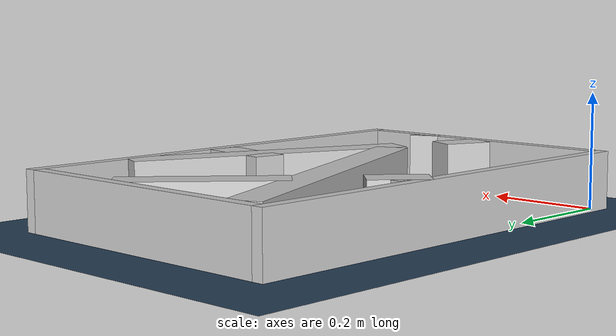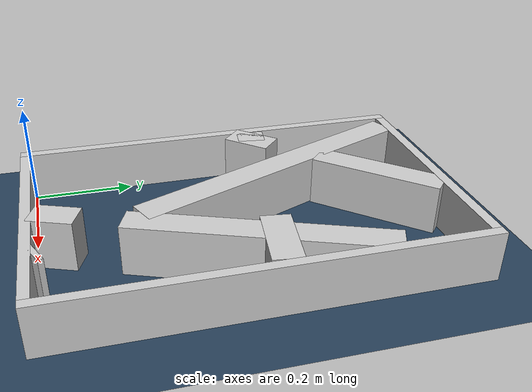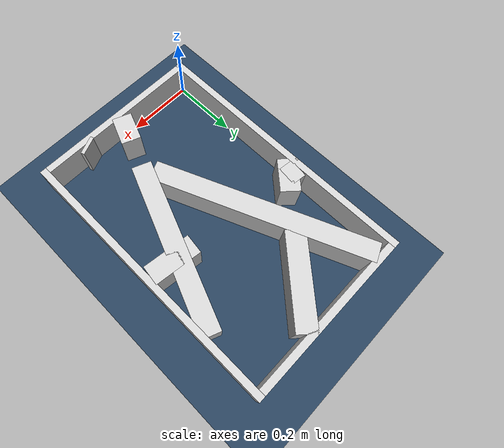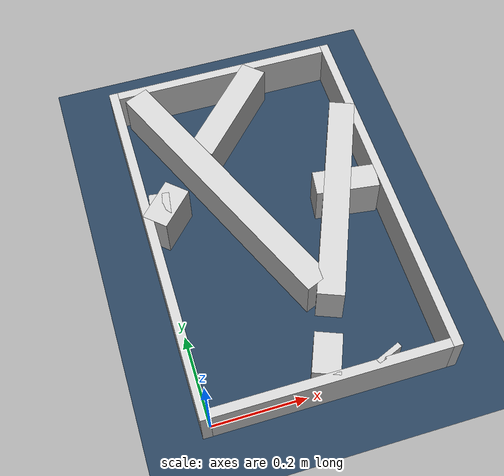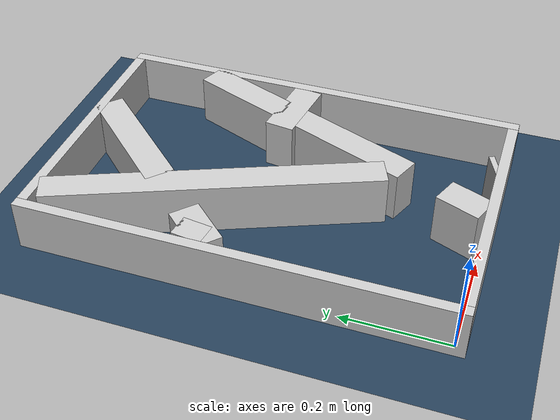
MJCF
<?xml version="1.0" ?>
<mujoco model="generated_real_template">
  <compiler angle="degree"/>
  <option timestep="0.002" integrator="implicitfast" iterations="100" cone="elliptic"/>
  <default>
    <geom density="1"/>
  </default>
  <asset>
    <texture builtin="gradient" height="3072" rgb1="0.3 0.5 0.7" rgb2="0 0 0" type="skybox" width="512"/>
    <texture builtin="checker" height="300" mark="edge" markrgb="0.8 0.8 0.8" name="groundplane" rgb1="0.2 0.3 0.4" rgb2="0.1 0.2 0.3" type="2d" width="300"/>
    <material name="groundplane" reflectance="0.2" texrepeat="5 5" texture="groundplane" texuniform="true"/>
  </asset>
  <worldbody>
    <light dir="0 0 -1" directional="true" pos="0 0 1.5"/>
    <geom name="floor" type="plane" condim="4" friction="0.5 0.005 0.001" material="groundplane" size="0 0 0.05"/>
    <body name="walls">
      <geom name="wall_boundary_left" type="box" condim="4" friction="1.0 0.005 0.0001" rgba="0.8 0.8 0.8 1" pos="-0.010000 0.387500 0.050000" euler="0 0 0.000000" size="0.010000 0.407500 0.050000"/>
      <geom name="wall_boundary_right" type="box" condim="4" friction="1.0 0.005 0.0001" rgba="0.8 0.8 0.8 1" pos="0.500000 0.387500 0.050000" euler="0 0 0.000000" size="0.010000 0.407500 0.050000"/>
      <geom name="wall_boundary_bottom" type="box" condim="4" friction="1.0 0.005 0.0001" rgba="0.8 0.8 0.8 1" pos="0.245000 -0.010000 0.050000" euler="0 0 0.000000" size="0.245000 0.010000 0.050000"/>
      <geom name="wall_boundary_top" type="box" condim="4" friction="1.0 0.005 0.0001" rgba="0.8 0.8 0.8 1" pos="0.245000 0.785000 0.050000" euler="0 0 0.000000" size="0.245000 0.010000 0.050000"/>
      <geom name="wall_inner_1_1" type="box" condim="4" friction="1.0 0.005 0.0001" rgba="0.8 0.8 0.8 1" pos="0.421522 0.414835 0.050000" euler="0 0 172.404918" size="0.069084 0.028500 0.050000"/>
      <geom name="wall_inner_1_2" type="box" condim="4" friction="1.0 0.005 0.0001" rgba="0.8 0.8 0.8 1" pos="0.021692 0.468149 0.050000" euler="0 0 172.404918" size="0.021884 0.028500 0.050000"/>
      <geom name="wall_inner_2_1" type="box" condim="4" friction="1.0 0.005 0.0001" rgba="0.8 0.8 0.8 1" pos="0.251242 0.040429 0.050000" euler="0 0 68.014685" size="0.043600 0.028500 0.050000"/>
      <geom name="wall_inner_2_2" type="box" condim="4" friction="1.0 0.005 0.0001" rgba="0.8 0.8 0.8 1" pos="0.391121 0.386898 0.050000" euler="0 0 68.014685" size="0.246951 0.028500 0.050000"/>
      <geom name="wall_inner_3_1" type="box" condim="4" friction="1.0 0.005 0.0001" rgba="0.8 0.8 0.8 1" pos="0.161862 0.483715 0.050000" euler="0 0 -67.035987" size="0.316356 0.028500 0.050000"/>
      <geom name="wall_inner_3_2" type="box" condim="4" friction="1.0 0.005 0.0001" rgba="0.8 0.8 0.8 1" pos="0.364730 0.004953 0.050000" euler="0 0 -67.035987" size="0.005379 0.028500 0.050000"/>
      <geom name="wall_inner_4_1" type="box" condim="4" friction="1.0 0.005 0.0001" rgba="0.8 0.8 0.8 1" pos="0.034461 0.466702 0.050000" euler="0 0 47.165915" size="0.049362 0.028500 0.050000"/>
      <geom name="wall_inner_4_2" type="box" condim="4" friction="1.0 0.005 0.0001" rgba="0.8 0.8 0.8 1" pos="0.230803 0.678479 0.050000" euler="0 0 47.165915" size="0.131620 0.028500 0.050000"/>
    </body>
  </worldbody>
</mujoco>
